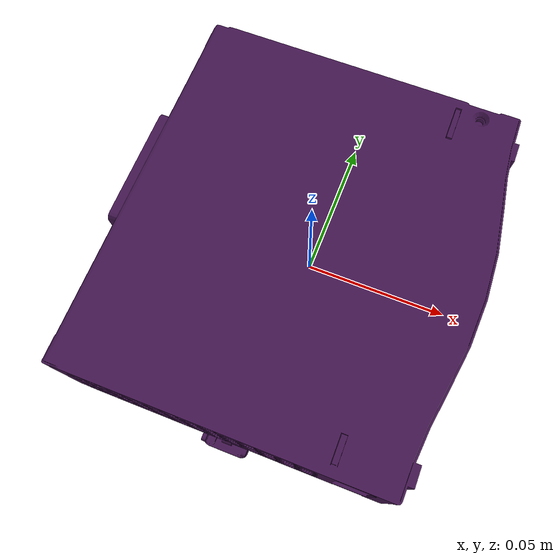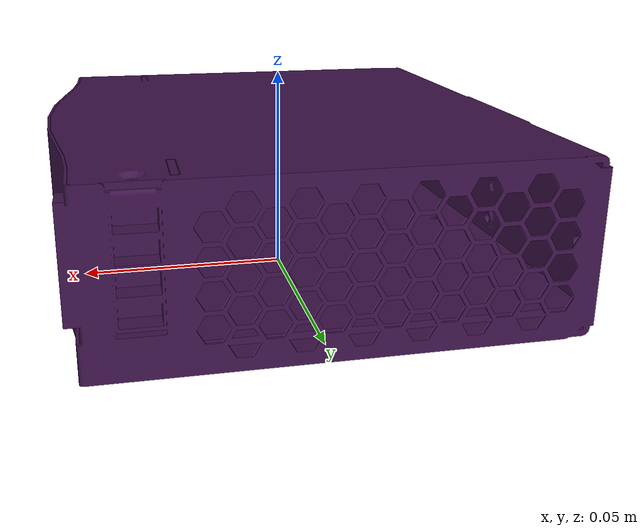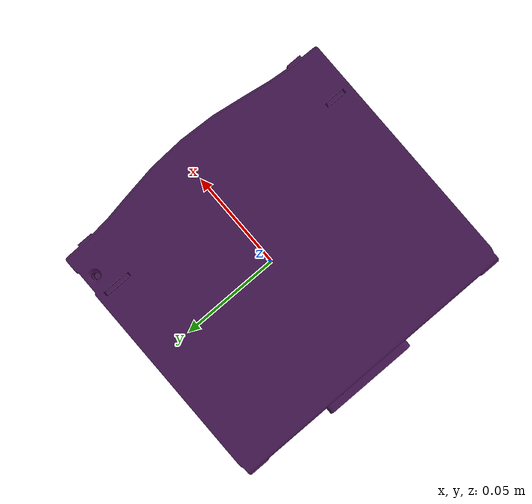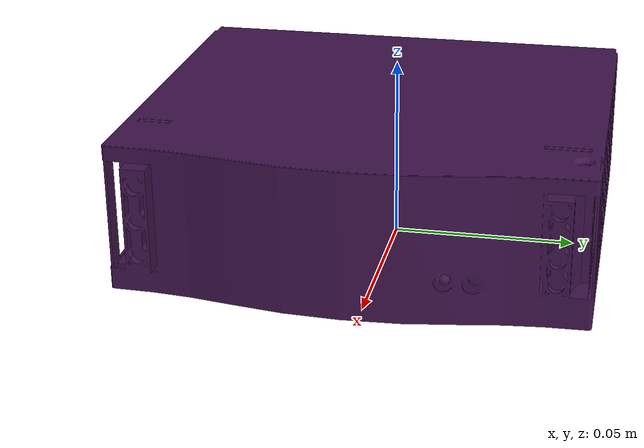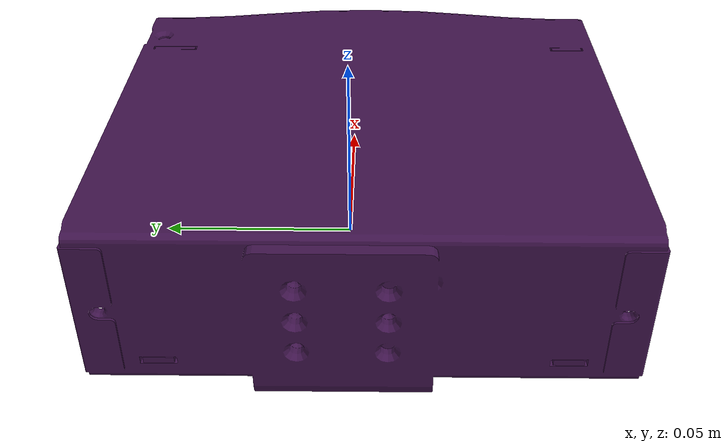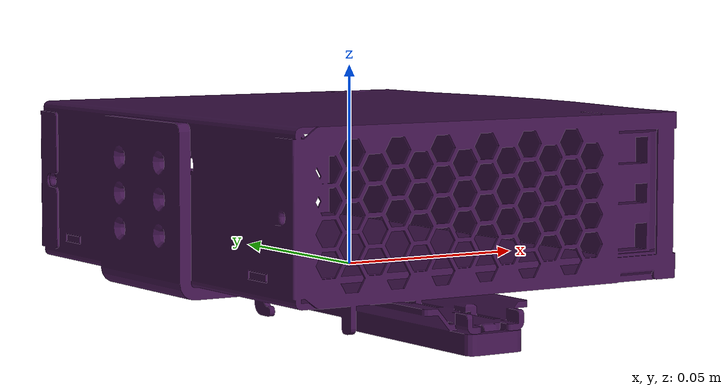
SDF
<?xml version="1.0" ?>
<sdf version="1.6">
  <model name="smps_wdr_120_24v">
    <link name="link">
      <gravity>false</gravity>
      <visual name="visual">
        <geometry>
          <mesh>
            <uri>file:///root/workcell_ws_classic/src/descriptions/ur_description/meshes/feeder/elec/objects/SMPS_WDR_120_24V.STL</uri>
            <scale>1 1 1</scale>
          </mesh>
        </geometry>
        <material>
          <!-- Dark purple metallic -->
          <ambient>0.15 0.05 0.18 1</ambient>
          <diffuse>0.25 0.08 0.3 1</diffuse>
          <specular>0.5 0.4 0.55 1</specular>
          <emissive>0 0 0 1</emissive>
        </material>
      </visual>

        <inertial>
          <mass>0.6</mass>
          <inertia>
            <ixx>0.001</ixx>
            <ixy>0</ixy>
            <ixz>0</ixz>
            <iyy>0.001</iyy>
            <iyz>0</iyz>
            <izz>0.001</izz>
          </inertia>
        </inertial>
    </link>
  </model>
</sdf>
